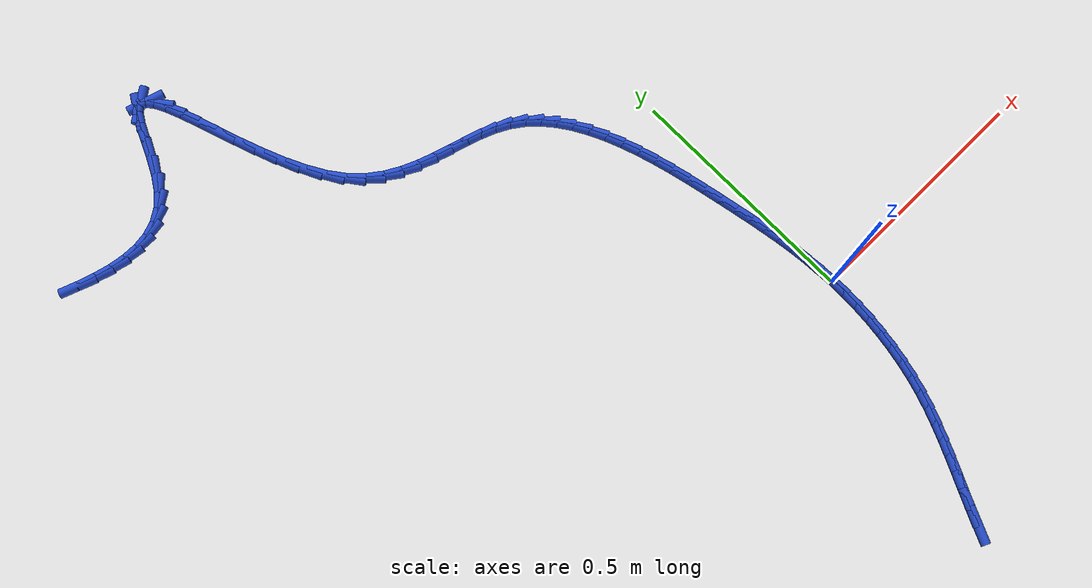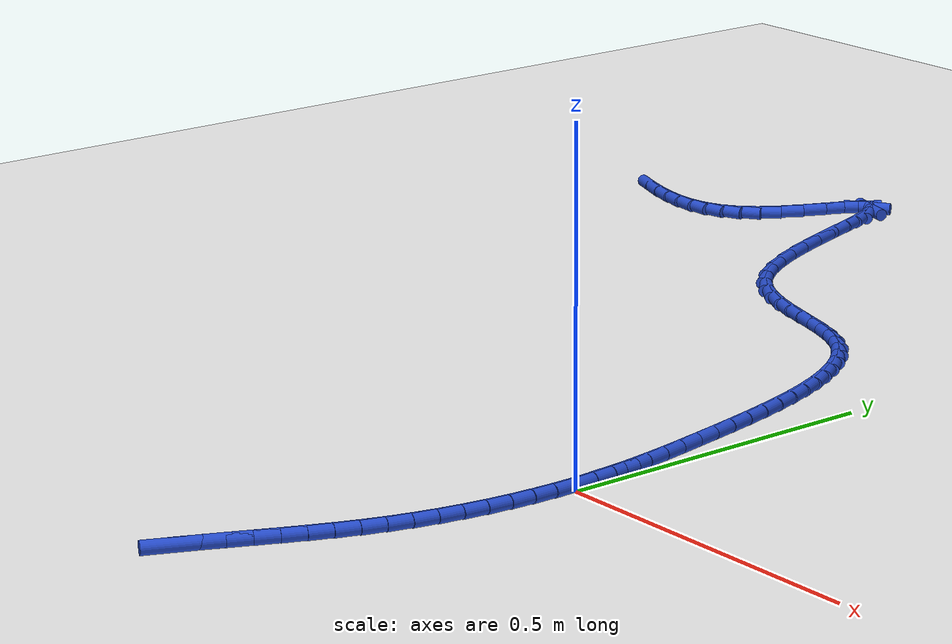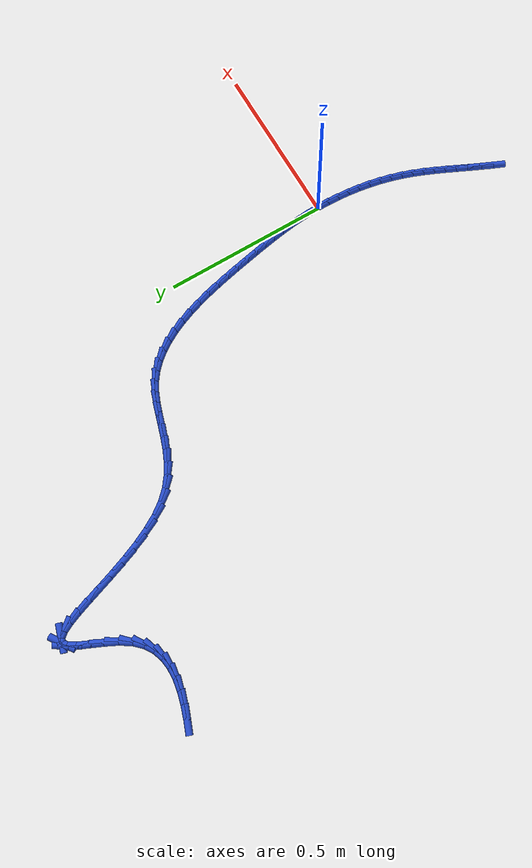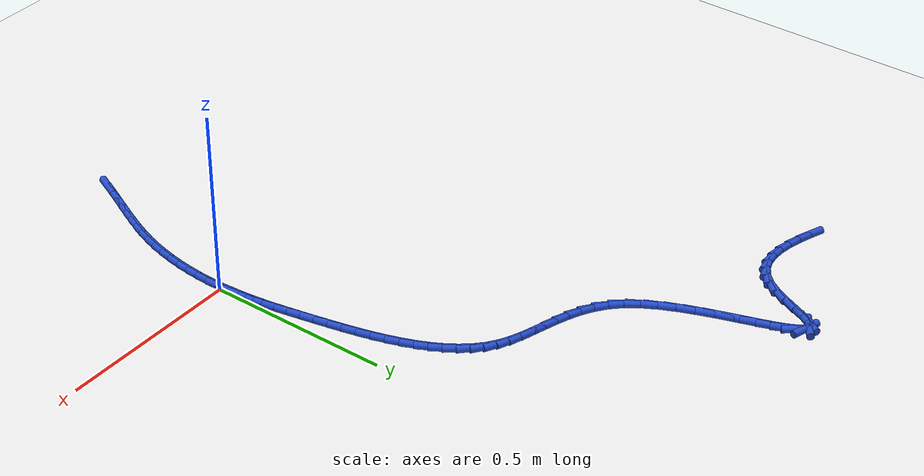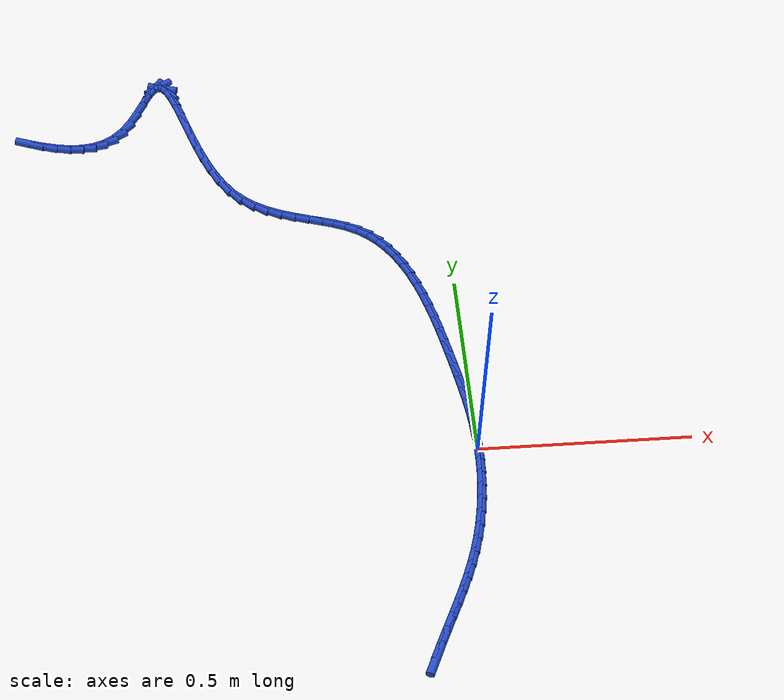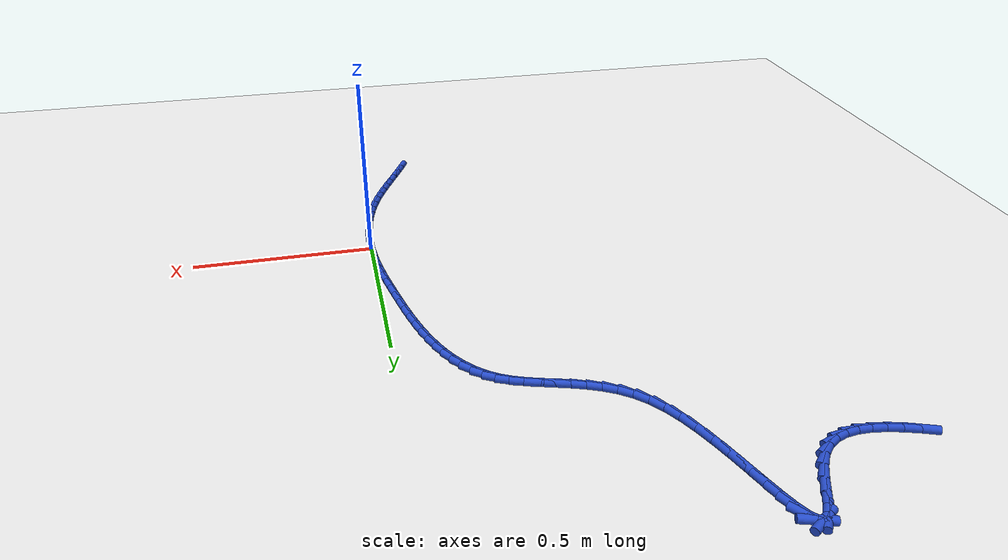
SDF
<sdf version="1.6">
 <world name="default">
  <model name="ground_plane">
   <static>1</static>
   <link name="link">
    <collision name="collision">
     <geometry><plane><normal>0 0 1</normal><size>100 100</size></plane></geometry>
     <surface><friction><ode><mu>100</mu><mu2>50</mu2></ode></friction></surface>
    </collision>
    <visual name="visual">
     <cast_shadows>0</cast_shadows>
     <geometry><plane><normal>0 0 1</normal><size>100 100</size></plane></geometry>
     <material>
      <script><uri>file://media/materials/scripts/gazebo.material</uri><name>Gazebo/WhiteGlow</name></script>
     </material>
    </visual>
   </link>
  </model>
  <model name="line">
   <link name="link_0">
    <pose>-5.204170427930421e-18 2.7755575615628914e-17 0.01 0 1.57 -1.5295594090134041</pose>
    <collision name="collision">
     <geometry><cylinder><radius>0.01</radius><length>0.08</length></cylinder></geometry>
    </collision>
    <visual name="visual">
     <material>
      <script><name>Gazebo/Blue</name><uri>file://media/materials/scripts/gazebo.material</uri></script>
     </material>
     <geometry><cylinder><radius>0.01</radius><length>0.08</length></cylinder></geometry>
    </visual>
   </link>
   <link name="link_1">
    <pose>-0.0014169569345195586 0.03434188947827309 0.01 0 1.57 -1.492928567645868</pose>
    <collision name="collision">
     <geometry><cylinder><radius>0.01</radius><length>0.08</length></cylinder></geometry>
    </collision>
    <visual name="visual">
     <material>
      <script><name>Gazebo/Blue</name><uri>file://media/materials/scripts/gazebo.material</uri></script>
     </material>
     <geometry><cylinder><radius>0.01</radius><length>0.08</length></cylinder></geometry>
    </visual>
   </link>
   <link name="link_2">
    <pose>-0.004075083631085635 0.0684092895790169 0.01 0 1.57 -1.4604513469485967</pose>
    <collision name="collision">
     <geometry><cylinder><radius>0.01</radius><length>0.08</length></cylinder></geometry>
    </collision>
    <visual name="visual">
     <material>
      <script><name>Gazebo/Blue</name><uri>file://media/materials/scripts/gazebo.material</uri></script>
     </material>
     <geometry><cylinder><radius>0.01</radius><length>0.08</length></cylinder></geometry>
    </visual>
   </link>
   <link name="link_3">
    <pose>-0.007837845970132656 0.1023707631037121 0.01 0 1.57 -1.4326376824889024</pose>
    <collision name="collision">
     <geometry><cylinder><radius>0.01</radius><length>0.08</length></cylinder></geometry>
    </collision>
    <visual name="visual">
     <material>
      <script><name>Gazebo/Blue</name><uri>file://media/materials/scripts/gazebo.material</uri></script>
     </material>
     <geometry><cylinder><radius>0.01</radius><length>0.08</length></cylinder></geometry>
    </visual>
   </link>
   <link name="link_4">
    <pose>-0.012568709832095036 0.13639487285383922 0.01 0 1.57 -1.4098197949192002</pose>
    <collision name="collision">
     <geometry><cylinder><radius>0.01</radius><length>0.08</length></cylinder></geometry>
    </collision>
    <visual name="visual">
     <material>
      <script><name>Gazebo/Blue</name><uri>file://media/materials/scripts/gazebo.material</uri></script>
     </material>
     <geometry><cylinder><radius>0.01</radius><length>0.08</length></cylinder></geometry>
    </visual>
   </link>
   <link name="link_5">
    <pose>-0.018131141097407207 0.17065018163087892 0.01 0 1.57 -1.39215696415325</pose>
    <collision name="collision">
     <geometry><cylinder><radius>0.01</radius><length>0.08</length></cylinder></geometry>
    </collision>
    <visual name="visual">
     <material>
      <script><name>Gazebo/Blue</name><uri>file://media/materials/scripts/gazebo.material</uri></script>
     </material>
     <geometry><cylinder><radius>0.01</radius><length>0.08</length></cylinder></geometry>
    </visual>
   </link>
   <link name="link_6">
    <pose>-0.024388605646503577 0.20530525223631177 0.01 0 1.57 -1.3796520291454994</pose>
    <collision name="collision">
     <geometry><cylinder><radius>0.01</radius><length>0.08</length></cylinder></geometry>
    </collision>
    <visual name="visual">
     <material>
      <script><name>Gazebo/Blue</name><uri>file://media/materials/scripts/gazebo.material</uri></script>
     </material>
     <geometry><cylinder><radius>0.01</radius><length>0.08</length></cylinder></geometry>
    </visual>
   </link>
   <link name="link_7">
    <pose>-0.03120456935981857 0.24052864747161834 0.01 0 1.57 -1.372162680434083</pose>
    <collision name="collision">
     <geometry><cylinder><radius>0.01</radius><length>0.08</length></cylinder></geometry>
    </collision>
    <visual name="visual">
     <material>
      <script><name>Gazebo/Blue</name><uri>file://media/materials/scripts/gazebo.material</uri></script>
     </material>
     <geometry><cylinder><radius>0.01</radius><length>0.08</length></cylinder></geometry>
    </visual>
   </link>
   <link name="link_8">
    <pose>-0.03844282927552442 0.27648837904686263 0.01 0 1.57 -1.366423891915562</pose>
    <collision name="collision">
     <geometry><cylinder><radius>0.01</radius><length>0.08</length></cylinder></geometry>
    </collision>
    <visual name="visual">
     <material>
      <script><name>Gazebo/Blue</name><uri>file://media/materials/scripts/gazebo.material</uri></script>
     </material>
     <geometry><cylinder><radius>0.01</radius><length>0.08</length></cylinder></geometry>
    </visual>
   </link>
   <link name="link_9">
    <pose>-0.04605367447657129 0.3132085241719294 0.01 0 1.57 -1.3553191319393685</pose>
    <collision name="collision">
     <geometry><cylinder><radius>0.01</radius><length>0.08</length></cylinder></geometry>
    </collision>
    <visual name="visual">
     <material>
      <script><name>Gazebo/Blue</name><uri>file://media/materials/scripts/gazebo.material</uri></script>
     </material>
     <geometry><cylinder><radius>0.01</radius><length>0.08</length></cylinder></geometry>
    </visual>
   </link>
   <link name="link_10">
    <pose>-0.05418905659707783 0.3503775662043218 0.01 0 1.57 -1.3378294844939285</pose>
    <collision name="collision">
     <geometry><cylinder><radius>0.01</radius><length>0.08</length></cylinder></geometry>
    </collision>
    <visual name="visual">
     <material>
      <script><name>Gazebo/Blue</name><uri>file://media/materials/scripts/gazebo.material</uri></script>
     </material>
     <geometry><cylinder><radius>0.01</radius><length>0.08</length></cylinder></geometry>
    </visual>
   </link>
   <link name="link_11">
    <pose>-0.06302961277472323 0.38763625193076445 0.01 0 1.57 -1.3136647814946891</pose>
    <collision name="collision">
     <geometry><cylinder><radius>0.01</radius><length>0.08</length></cylinder></geometry>
    </collision>
    <visual name="visual">
     <material>
      <script><name>Gazebo/Blue</name><uri>file://media/materials/scripts/gazebo.material</uri></script>
     </material>
     <geometry><cylinder><radius>0.01</radius><length>0.08</length></cylinder></geometry>
    </visual>
   </link>
   <link name="link_12">
    <pose>-0.07275598014718661 0.4246253281379812 0.01 0 1.57 -1.2822499783672037</pose>
    <collision name="collision">
     <geometry><cylinder><radius>0.01</radius><length>0.08</length></cylinder></geometry>
    </collision>
    <visual name="visual">
     <material>
      <script><name>Gazebo/Blue</name><uri>file://media/materials/scripts/gazebo.material</uri></script>
     </material>
     <geometry><cylinder><radius>0.01</radius><length>0.08</length></cylinder></geometry>
    </visual>
   </link>
   <link name="link_13">
    <pose>-0.0835487958521471 0.46098554161269617 0.01 0 1.57 -1.2427185880478226</pose>
    <collision name="collision">
     <geometry><cylinder><radius>0.01</radius><length>0.08</length></cylinder></geometry>
    </collision>
    <visual name="visual">
     <material>
      <script><name>Gazebo/Blue</name><uri>file://media/materials/scripts/gazebo.material</uri></script>
     </material>
     <geometry><cylinder><radius>0.01</radius><length>0.08</length></cylinder></geometry>
    </visual>
   </link>
   <link name="link_14">
    <pose>-0.09558869702728386 0.4963576391416338 0.01 0 1.57 -1.1938997068330766</pose>
    <collision name="collision">
     <geometry><cylinder><radius>0.01</radius><length>0.08</length></cylinder></geometry>
    </collision>
    <visual name="visual">
     <material>
      <script><name>Gazebo/Blue</name><uri>file://media/materials/scripts/gazebo.material</uri></script>
     </material>
     <geometry><cylinder><radius>0.01</radius><length>0.08</length></cylinder></geometry>
    </visual>
   </link>
   <link name="link_15">
    <pose>-0.10905632081027611 0.5303823675115183 0.01 0 1.57 -1.1343165302581957</pose>
    <collision name="collision">
     <geometry><cylinder><radius>0.01</radius><length>0.08</length></cylinder></geometry>
    </collision>
    <visual name="visual">
     <material>
      <script><name>Gazebo/Blue</name><uri>file://media/materials/scripts/gazebo.material</uri></script>
     </material>
     <geometry><cylinder><radius>0.01</radius><length>0.08</length></cylinder></geometry>
    </visual>
   </link>
   <link name="link_16">
    <pose>-0.12413230433880296 0.5627004735090739 0.01 0 1.57 -1.062229290019738</pose>
    <collision name="collision">
     <geometry><cylinder><radius>0.01</radius><length>0.08</length></cylinder></geometry>
    </collision>
    <visual name="visual">
     <material>
      <script><name>Gazebo/Blue</name><uri>file://media/materials/scripts/gazebo.material</uri></script>
     </material>
     <geometry><cylinder><radius>0.01</radius><length>0.08</length></cylinder></geometry>
    </visual>
   </link>
   <link name="link_17">
    <pose>-0.14099728475054352 0.5929527039210245 0.01 0 1.57 -0.9757807442965027</pose>
    <collision name="collision">
     <geometry><cylinder><radius>0.01</radius><length>0.08</length></cylinder></geometry>
    </collision>
    <visual name="visual">
     <material>
      <script><name>Gazebo/Blue</name><uri>file://media/materials/scripts/gazebo.material</uri></script>
     </material>
     <geometry><cylinder><radius>0.01</radius><length>0.08</length></cylinder></geometry>
    </visual>
   </link>
   <link name="link_18">
    <pose>-0.15983189918317697 0.6207798055340946 0.01 0 1.57 -0.8733316935708395</pose>
    <collision name="collision">
     <geometry><cylinder><radius>0.01</radius><length>0.08</length></cylinder></geometry>
    </collision>
    <visual name="visual">
     <material>
      <script><name>Gazebo/Blue</name><uri>file://media/materials/scripts/gazebo.material</uri></script>
     </material>
     <geometry><cylinder><radius>0.01</radius><length>0.08</length></cylinder></geometry>
    </visual>
   </link>
   <link name="link_19">
    <pose>-0.1808167847743824 0.6458225251350083 0.01 0 1.57 -0.7540755938527375</pose>
    <collision name="collision">
     <geometry><cylinder><radius>0.01</radius><length>0.08</length></cylinder></geometry>
    </collision>
    <visual name="visual">
     <material>
      <script><name>Gazebo/Blue</name><uri>file://media/materials/scripts/gazebo.material</uri></script>
     </material>
     <geometry><cylinder><radius>0.01</radius><length>0.08</length></cylinder></geometry>
    </visual>
   </link>
   <link name="link_20">
    <pose>-0.20413257866183912 0.6677216095104896 0.01 0 1.57 -0.618920137825888</pose>
    <collision name="collision">
     <geometry><cylinder><radius>0.01</radius><length>0.08</length></cylinder></geometry>
    </collision>
    <visual name="visual">
     <material>
      <script><name>Gazebo/Blue</name><uri>file://media/materials/scripts/gazebo.material</uri></script>
     </material>
     <geometry><cylinder><radius>0.01</radius><length>0.08</length></cylinder></geometry>
    </visual>
   </link>
   <link name="link_21">
    <pose>-0.22995987966621645 0.6861178802591036 0.01 0 1.57 -0.4813224558688969</pose>
    <collision name="collision">
     <geometry><cylinder><radius>0.01</radius><length>0.08</length></cylinder></geometry>
    </collision>
    <visual name="visual">
     <material>
      <script><name>Gazebo/Blue</name><uri>file://media/materials/scripts/gazebo.material</uri></script>
     </material>
     <geometry><cylinder><radius>0.01</radius><length>0.08</length></cylinder></geometry>
    </visual>
   </link>
   <link name="link_22">
    <pose>-0.2583333297952614 0.700937131577133 0.01 0 1.57 -0.37784718666653777</pose>
    <collision name="collision">
     <geometry><cylinder><radius>0.01</radius><length>0.08</length></cylinder></geometry>
    </collision>
    <visual name="visual">
     <material>
      <script><name>Gazebo/Blue</name><uri>file://media/materials/scripts/gazebo.material</uri></script>
     </material>
     <geometry><cylinder><radius>0.01</radius><length>0.08</length></cylinder></geometry>
    </visual>
   </link>
   <link name="link_23">
    <pose>-0.28881157471532903 0.7130345141684127 0.01 0 1.57 -0.31437980762544593</pose>
    <collision name="collision">
     <geometry><cylinder><radius>0.01</radius><length>0.08</length></cylinder></geometry>
    </collision>
    <visual name="visual">
     <material>
      <script><name>Gazebo/Blue</name><uri>file://media/materials/scripts/gazebo.material</uri></script>
     </material>
     <geometry><cylinder><radius>0.01</radius><length>0.08</length></cylinder></geometry>
    </visual>
   </link>
   <link name="link_24">
    <pose>-0.32085638671139727 0.7234543186514414 0.01 0 1.57 -0.28769586318459905</pose>
    <collision name="collision">
     <geometry><cylinder><radius>0.01</radius><length>0.08</length></cylinder></geometry>
    </collision>
    <visual name="visual">
     <material>
      <script><name>Gazebo/Blue</name><uri>file://media/materials/scripts/gazebo.material</uri></script>
     </material>
     <geometry><cylinder><radius>0.01</radius><length>0.08</length></cylinder></geometry>
    </visual>
   </link>
   <link name="link_25">
    <pose>-0.35392953806844385 0.7332408356447183 0.01 0 1.57 -0.2949666757380576</pose>
    <collision name="collision">
     <geometry><cylinder><radius>0.01</radius><length>0.08</length></cylinder></geometry>
    </collision>
    <visual name="visual">
     <material>
      <script><name>Gazebo/Blue</name><uri>file://media/materials/scripts/gazebo.material</uri></script>
     </material>
     <geometry><cylinder><radius>0.01</radius><length>0.08</length></cylinder></geometry>
    </visual>
   </link>
   <link name="link_26">
    <pose>-0.38749280107144707 0.7434383557667423 0.01 0 1.57 -0.3346136339096233</pose>
    <collision name="collision">
     <geometry><cylinder><radius>0.01</radius><length>0.08</length></cylinder></geometry>
    </collision>
    <visual name="visual">
     <material>
      <script><name>Gazebo/Blue</name><uri>file://media/materials/scripts/gazebo.material</uri></script>
     </material>
     <geometry><cylinder><radius>0.01</radius><length>0.08</length></cylinder></geometry>
    </visual>
   </link>
   <link name="link_27">
    <pose>-0.4210079480053845 0.7550911696360121 0.01 0 1.57 -0.4059189672359612</pose>
    <collision name="collision">
     <geometry><cylinder><radius>0.01</radius><length>0.08</length></cylinder></geometry>
    </collision>
    <visual name="visual">
     <material>
      <script><name>Gazebo/Blue</name><uri>file://media/materials/scripts/gazebo.material</uri></script>
     </material>
     <geometry><cylinder><radius>0.01</radius><length>0.08</length></cylinder></geometry>
    </visual>
   </link>
   <link name="link_28">
    <pose>-0.4539367511552342 0.7692435678710267 0.01 0 1.57 -0.5077531292962789</pose>
    <collision name="collision">
     <geometry><cylinder><radius>0.01</radius><length>0.08</length></cylinder></geometry>
    </collision>
    <visual name="visual">
     <material>
      <script><name>Gazebo/Blue</name><uri>file://media/materials/scripts/gazebo.material</uri></script>
     </material>
     <geometry><cylinder><radius>0.01</radius><length>0.08</length></cylinder></geometry>
    </visual>
   </link>
   <link name="link_29">
    <pose>-0.48574098280597383 0.7869398410902848 0.01 0 1.57 -0.6366366953817574</pose>
    <collision name="collision">
     <geometry><cylinder><radius>0.01</radius><length>0.08</length></cylinder></geometry>
    </collision>
    <visual name="visual">
     <material>
      <script><name>Gazebo/Blue</name><uri>file://media/materials/scripts/gazebo.material</uri></script>
     </material>
     <geometry><cylinder><radius>0.01</radius><length>0.08</length></cylinder></geometry>
    </visual>
   </link>
   <link name="link_30">
    <pose>-0.5158824152425817 0.8092242799122857 0.01 0 1.57 -0.7849772611592256</pose>
    <collision name="collision">
     <geometry><cylinder><radius>0.01</radius><length>0.08</length></cylinder></geometry>
    </collision>
    <visual name="visual">
     <material>
      <script><name>Gazebo/Blue</name><uri>file://media/materials/scripts/gazebo.material</uri></script>
     </material>
     <geometry><cylinder><radius>0.01</radius><length>0.08</length></cylinder></geometry>
    </visual>
   </link>
   <link name="link_31">
    <pose>-0.543822820750036 0.8371411749555288 0.01 0 1.57 -0.9354698043360513</pose>
    <collision name="collision">
     <geometry><cylinder><radius>0.01</radius><length>0.08</length></cylinder></geometry>
    </collision>
    <visual name="visual">
     <material>
      <script><name>Gazebo/Blue</name><uri>file://media/materials/scripts/gazebo.material</uri></script>
     </material>
     <geometry><cylinder><radius>0.01</radius><length>0.08</length></cylinder></geometry>
    </visual>
   </link>
   <link name="link_32">
    <pose>-0.5691129564258318 0.8714419648784033 0.01 0 1.57 -1.050915930820242</pose>
    <collision name="collision">
     <geometry><cylinder><radius>0.01</radius><length>0.08</length></cylinder></geometry>
    </collision>
    <visual name="visual">
     <material>
      <script><name>Gazebo/Blue</name><uri>file://media/materials/scripts/gazebo.material</uri></script>
     </material>
     <geometry><cylinder><radius>0.01</radius><length>0.08</length></cylinder></geometry>
    </visual>
   </link>
   <link name="link_33">
    <pose>-0.5918332766480967 0.9111348370753205 0.01 0 1.57 -1.131353881538183</pose>
    <collision name="collision">
     <geometry><cylinder><radius>0.01</radius><length>0.08</length></cylinder></geometry>
    </collision>
    <visual name="visual">
     <material>
      <script><name>Gazebo/Blue</name><uri>file://media/materials/scripts/gazebo.material</uri></script>
     </material>
     <geometry><cylinder><radius>0.01</radius><length>0.08</length></cylinder></geometry>
    </visual>
   </link>
   <link name="link_34">
    <pose>-0.6122594403990578 0.9545855541345307 0.01 0 1.57 -1.1869152295459393</pose>
    <collision name="collision">
     <geometry><cylinder><radius>0.01</radius><length>0.08</length></cylinder></geometry>
    </collision>
    <visual name="visual">
     <material>
      <script><name>Gazebo/Blue</name><uri>file://media/materials/scripts/gazebo.material</uri></script>
     </material>
     <geometry><cylinder><radius>0.01</radius><length>0.08</length></cylinder></geometry>
    </visual>
   </link>
   <link name="link_35">
    <pose>-0.6306674132162439 1.0001588697606523 0.01 0 1.57 -1.2236290220097574</pose>
    <collision name="collision">
     <geometry><cylinder><radius>0.01</radius><length>0.08</length></cylinder></geometry>
    </collision>
    <visual name="visual">
     <material>
      <script><name>Gazebo/Blue</name><uri>file://media/materials/scripts/gazebo.material</uri></script>
     </material>
     <geometry><cylinder><radius>0.01</radius><length>0.08</length></cylinder></geometry>
    </visual>
   </link>
   <link name="link_36">
    <pose>-0.6473331606371838 1.0462195376583032 0.01 0 1.57 -1.2444726494711058</pose>
    <collision name="collision">
     <geometry><cylinder><radius>0.01</radius><length>0.08</length></cylinder></geometry>
    </collision>
    <visual name="visual">
     <material>
      <script><name>Gazebo/Blue</name><uri>file://media/materials/scripts/gazebo.material</uri></script>
     </material>
     <geometry><cylinder><radius>0.01</radius><length>0.08</length></cylinder></geometry>
    </visual>
   </link>
   <link name="link_37">
    <pose>-0.6625326481994066 1.0911323115321006 0.01 0 1.57 -1.2497726612800535</pose>
    <collision name="collision">
     <geometry><cylinder><radius>0.01</radius><length>0.08</length></cylinder></geometry>
    </collision>
    <visual name="visual">
     <material>
      <script><name>Gazebo/Blue</name><uri>file://media/materials/scripts/gazebo.material</uri></script>
     </material>
     <geometry><cylinder><radius>0.01</radius><length>0.08</length></cylinder></geometry>
    </visual>
   </link>
   <link name="link_38">
    <pose>-0.676541841440441 1.133261945086663 0.01 0 1.57 -1.236582155620675</pose>
    <collision name="collision">
     <geometry><cylinder><radius>0.01</radius><length>0.08</length></cylinder></geometry>
    </collision>
    <visual name="visual">
     <material>
      <script><name>Gazebo/Blue</name><uri>file://media/materials/scripts/gazebo.material</uri></script>
     </material>
     <geometry><cylinder><radius>0.01</radius><length>0.08</length></cylinder></geometry>
    </visual>
   </link>
   <link name="link_39">
    <pose>-0.689636705897816 1.1709731920266082 0.01 0 1.57 -1.195926985811713</pose>
    <collision name="collision">
     <geometry><cylinder><radius>0.01</radius><length>0.08</length></cylinder></geometry>
    </collision>
    <visual name="visual">
     <material>
      <script><name>Gazebo/Blue</name><uri>file://media/materials/scripts/gazebo.material</uri></script>
     </material>
     <geometry><cylinder><radius>0.01</radius><length>0.08</length></cylinder></geometry>
    </visual>
   </link>
   <link name="link_40">
    <pose>-0.7020932071090603 1.2026308060565538 0.01 0 1.57 -1.1034927882325485</pose>
    <collision name="collision">
     <geometry><cylinder><radius>0.01</radius><length>0.08</length></cylinder></geometry>
    </collision>
    <visual name="visual">
     <material>
      <script><name>Gazebo/Blue</name><uri>file://media/materials/scripts/gazebo.material</uri></script>
     </material>
     <geometry><cylinder><radius>0.01</radius><length>0.08</length></cylinder></geometry>
    </visual>
   </link>
   <link name="link_41">
    <pose>-0.7141873106117032 1.2265995408811186 0.01 0 1.57 -0.8840157648506225</pose>
    <collision name="collision">
     <geometry><cylinder><radius>0.01</radius><length>0.08</length></cylinder></geometry>
    </collision>
    <visual name="visual">
     <material>
      <script><name>Gazebo/Blue</name><uri>file://media/materials/scripts/gazebo.material</uri></script>
     </material>
     <geometry><cylinder><radius>0.01</radius><length>0.08</length></cylinder></geometry>
    </visual>
   </link>
   <link name="link_42">
    <pose>-0.7261949819432729 1.241244150204919 0.01 0 1.57 -0.2934169932314978</pose>
    <collision name="collision">
     <geometry><cylinder><radius>0.01</radius><length>0.08</length></cylinder></geometry>
    </collision>
    <visual name="visual">
     <material>
      <script><name>Gazebo/Blue</name><uri>file://media/materials/scripts/gazebo.material</uri></script>
     </material>
     <geometry><cylinder><radius>0.01</radius><length>0.08</length></cylinder></geometry>
    </visual>
   </link>
   <link name="link_43">
    <pose>-0.7383921866412987 1.2449293877325742 0.01 0 1.57 0.6130799242976773</pose>
    <collision name="collision">
     <geometry><cylinder><radius>0.01</radius><length>0.08</length></cylinder></geometry>
    </collision>
    <visual name="visual">
     <material>
      <script><name>Gazebo/Blue</name><uri>file://media/materials/scripts/gazebo.material</uri></script>
     </material>
     <geometry><cylinder><radius>0.01</radius><length>0.08</length></cylinder></geometry>
    </visual>
   </link>
   <link name="link_44">
    <pose>-0.7510549122303716 1.2360209931871597 0.01 0 1.57 1.0181445368010154</pose>
    <collision name="collision">
     <geometry><cylinder><radius>0.01</radius><length>0.08</length></cylinder></geometry>
    </collision>
    <visual name="visual">
     <material>
      <script><name>Gazebo/Blue</name><uri>file://media/materials/scripts/gazebo.material</uri></script>
     </material>
     <geometry><cylinder><radius>0.01</radius><length>0.08</length></cylinder></geometry>
    </visual>
   </link>
   <link name="link_45">
    <pose>-0.7644893392520428 1.2142387240140642 0.01 0 1.57 1.1293146660367903</pose>
    <collision name="collision">
     <geometry><cylinder><radius>0.01</radius><length>0.08</length></cylinder></geometry>
    </collision>
    <visual name="visual">
     <material>
      <script><name>Gazebo/Blue</name><uri>file://media/materials/scripts/gazebo.material</uri></script>
     </material>
     <geometry><cylinder><radius>0.01</radius><length>0.08</length></cylinder></geometry>
    </visual>
   </link>
   <link name="link_46">
    <pose>-0.7790916897498845 1.1833402842356449 0.01 0 1.57 1.1431556896960293</pose>
    <collision name="collision">
     <geometry><cylinder><radius>0.01</radius><length>0.08</length></cylinder></geometry>
    </collision>
    <visual name="visual">
     <material>
      <script><name>Gazebo/Blue</name><uri>file://media/materials/scripts/gazebo.material</uri></script>
     </material>
     <geometry><cylinder><radius>0.01</radius><length>0.08</length></cylinder></geometry>
    </visual>
   </link>
   <link name="link_47">
    <pose>-0.7952748963168429 1.1478327690341772 0.01 0 1.57 1.098820851667058</pose>
    <collision name="collision">
     <geometry><cylinder><radius>0.01</radius><length>0.08</length></cylinder></geometry>
    </collision>
    <visual name="visual">
     <material>
      <script><name>Gazebo/Blue</name><uri>file://media/materials/scripts/gazebo.material</uri></script>
     </material>
     <geometry><cylinder><radius>0.01</radius><length>0.08</length></cylinder></geometry>
    </visual>
   </link>
   <link name="link_48">
    <pose>-0.8134518915458646 1.1122232735919362 0.01 0 1.57 0.9877795945861113</pose>
    <collision name="collision">
     <geometry><cylinder><radius>0.01</radius><length>0.08</length></cylinder></geometry>
    </collision>
    <visual name="visual">
     <material>
      <script><name>Gazebo/Blue</name><uri>file://media/materials/scripts/gazebo.material</uri></script>
     </material>
     <geometry><cylinder><radius>0.01</radius><length>0.08</length></cylinder></geometry>
    </visual>
   </link>
   <link name="link_49">
    <pose>-0.8340348722163158 1.081012758287712 0.01 0 1.57 0.7967184467105943</pose>
    <collision name="collision">
     <geometry><cylinder><radius>0.01</radius><length>0.08</length></cylinder></geometry>
    </collision>
    <visual name="visual">
     <material>
      <script><name>Gazebo/Blue</name><uri>file://media/materials/scripts/gazebo.material</uri></script>
     </material>
     <geometry><cylinder><radius>0.01</radius><length>0.08</length></cylinder></geometry>
    </visual>
   </link>
   <link name="link_50">
    <pose>-0.8572622708435654 1.057253433922149 0.01 0 1.57 0.5722777304936463</pose>
    <collision name="collision">
     <geometry><cylinder><radius>0.01</radius><length>0.08</length></cylinder></geometry>
    </collision>
    <visual name="visual">
     <material>
      <script><name>Gazebo/Blue</name><uri>file://media/materials/scripts/gazebo.material</uri></script>
     </material>
     <geometry><cylinder><radius>0.01</radius><length>0.08</length></cylinder></geometry>
    </visual>
   </link>
   <link name="link_51">
    <pose>-0.8829757150570987 1.0406891733338695 0.01 0 1.57 0.34587273314613376</pose>
    <collision name="collision">
     <geometry><cylinder><radius>0.01</radius><length>0.08</length></cylinder></geometry>
    </collision>
    <visual name="visual">
     <material>
      <script><name>Gazebo/Blue</name><uri>file://media/materials/scripts/gazebo.material</uri></script>
     </material>
     <geometry><cylinder><radius>0.01</radius><length>0.08</length></cylinder></geometry>
    </visual>
   </link>
   <link name="link_52">
    <pose>-0.9109617006961301 1.030604191224311 0.01 0 1.57 0.14285401857127752</pose>
    <collision name="collision">
     <geometry><cylinder><radius>0.01</radius><length>0.08</length></cylinder></geometry>
    </collision>
    <visual name="visual">
     <material>
      <script><name>Gazebo/Blue</name><uri>file://media/materials/scripts/gazebo.material</uri></script>
     </material>
     <geometry><cylinder><radius>0.01</radius><length>0.08</length></cylinder></geometry>
    </visual>
   </link>
   <link name="link_53">
    <pose>-0.9410067235998725 1.0262827022949106 0.01 0 1.57 -0.022768290971229156</pose>
    <collision name="collision">
     <geometry><cylinder><radius>0.01</radius><length>0.08</length></cylinder></geometry>
    </collision>
    <visual name="visual">
     <material>
      <script><name>Gazebo/Blue</name><uri>file://media/materials/scripts/gazebo.material</uri></script>
     </material>
     <geometry><cylinder><radius>0.01</radius><length>0.08</length></cylinder></geometry>
    </visual>
   </link>
   <link name="link_54">
    <pose>-0.9728972796075404 1.027008921247107 0.01 0 1.57 -0.14975787793225118</pose>
    <collision name="collision">
     <geometry><cylinder><radius>0.01</radius><length>0.08</length></cylinder></geometry>
    </collision>
    <visual name="visual">
     <material>
      <script><name>Gazebo/Blue</name><uri>file://media/materials/scripts/gazebo.material</uri></script>
     </material>
     <geometry><cylinder><radius>0.01</radius><length>0.08</length></cylinder></geometry>
    </visual>
   </link>
   <link name="link_55">
    <pose>-1.0064198645583473 1.0320670627823374 0.01 0 1.57 -0.24333492597862233</pose>
    <collision name="collision">
     <geometry><cylinder><radius>0.01</radius><length>0.08</length></cylinder></geometry>
    </collision>
    <visual name="visual">
     <material>
      <script><name>Gazebo/Blue</name><uri>file://media/materials/scripts/gazebo.material</uri></script>
     </material>
     <geometry><cylinder><radius>0.01</radius><length>0.08</length></cylinder></geometry>
    </visual>
   </link>
   <link name="link_56">
    <pose>-1.041360974291507 1.0407413416020388 0.01 0 1.57 -0.3099004122861065</pose>
    <collision name="collision">
     <geometry><cylinder><radius>0.01</radius><length>0.08</length></cylinder></geometry>
    </collision>
    <visual name="visual">
     <material>
      <script><name>Gazebo/Blue</name><uri>file://media/materials/scripts/gazebo.material</uri></script>
     </material>
     <geometry><cylinder><radius>0.01</radius><length>0.08</length></cylinder></geometry>
    </visual>
   </link>
   <link name="link_57">
    <pose>-1.0775071046462337 1.0523159724076496 0.01 0 1.57 -0.35481252147726433</pose>
    <collision name="collision">
     <geometry><cylinder><radius>0.01</radius><length>0.08</length></cylinder></geometry>
    </collision>
    <visual name="visual">
     <material>
      <script><name>Gazebo/Blue</name><uri>file://media/materials/scripts/gazebo.material</uri></script>
     </material>
     <geometry><cylinder><radius>0.01</radius><length>0.08</length></cylinder></geometry>
    </visual>
   </link>
   <link name="link_214">
    <pose>-0.15118002234854214 -0.5321493578379444 0.01 0 1.57 1.1462569156904456</pose>
    <collision name="collision">
     <geometry><cylinder><radius>0.01</radius><length>0.08</length></cylinder></geometry>
    </collision>
    <visual name="visual">
     <material>
      <script><name>Gazebo/Blue</name><uri>file://media/materials/scripts/gazebo.material</uri></script>
     </material>
     <geometry><cylinder><radius>0.01</radius><length>0.08</length></cylinder></geometry>
    </visual>
   </link>
   <link name="link_215">
    <pose>-0.1359355760174906 -0.49842482086527456 0.01 0 1.57 1.1327827198855829</pose>
    <collision name="collision">
     <geometry><cylinder><radius>0.01</radius><length>0.08</length></cylinder></geometry>
    </collision>
    <visual name="visual">
     <material>
      <script><name>Gazebo/Blue</name><uri>file://media/materials/scripts/gazebo.material</uri></script>
     </material>
     <geometry><cylinder><radius>0.01</radius><length>0.08</length></cylinder></geometry>
    </visual>
   </link>
   <link name="link_216">
    <pose>-0.12061322029920488 -0.4657096406089677 0.01 0 1.57 1.127238218801412</pose>
    <collision name="collision">
     <geometry><cylinder><radius>0.01</radius><length>0.08</length></cylinder></geometry>
    </collision>
    <visual name="visual">
     <material>
      <script><name>Gazebo/Blue</name><uri>file://media/materials/scripts/gazebo.material</uri></script>
     </material>
     <geometry><cylinder><radius>0.01</radius><length>0.08</length></cylinder></geometry>
    </visual>
   </link>
   <link name="link_217">
    <pose>-0.10542477280702355 -0.4337430163624082 0.01 0 1.57 1.1303449696198438</pose>
    <collision name="collision">
     <geometry><cylinder><radius>0.01</radius><length>0.08</length></cylinder></geometry>
    </collision>
    <visual name="visual">
     <material>
      <script><name>Gazebo/Blue</name><uri>file://media/materials/scripts/gazebo.material</uri></script>
     </material>
     <geometry><cylinder><radius>0.01</radius><length>0.08</length></cylinder></geometry>
    </visual>
   </link>
   <link name="link_218">
    <pose>-0.09058521968734116 -0.4022587294352043 0.01 0 1.57 1.1425037493935166</pose>
    <collision name="collision">
     <geometry><cylinder><radius>0.01</radius><length>0.08</length></cylinder></geometry>
    </collision>
    <visual name="visual">
     <material>
      <script><name>Gazebo/Blue</name><uri>file://media/materials/scripts/gazebo.material</uri></script>
     </material>
     <geometry><cylinder><radius>0.01</radius><length>0.08</length></cylinder></geometry>
    </visual>
   </link>
   <link name="link_219">
    <pose>-0.07630954708655202 -0.3709905611369639 0.01 0 1.57 1.163891452596351</pose>
    <collision name="collision">
     <geometry><cylinder><radius>0.01</radius><length>0.08</length></cylinder></geometry>
    </collision>
    <visual name="visual">
     <material>
      <script><name>Gazebo/Blue</name><uri>file://media/materials/scripts/gazebo.material</uri></script>
     </material>
     <geometry><cylinder><radius>0.01</radius><length>0.08</length></cylinder></geometry>
    </visual>
   </link>
   <link name="link_220">
    <pose>-0.06281274115105141 -0.3396722927772972 0.01 0 1.57 1.1944083529391885</pose>
    <collision name="collision">
     <geometry><cylinder><radius>0.01</radius><length>0.08</length></cylinder></geometry>
    </collision>
    <visual name="visual">
     <material>
      <script><name>Gazebo/Blue</name><uri>file://media/materials/scripts/gazebo.material</uri></script>
     </material>
     <geometry><cylinder><radius>0.01</radius><length>0.08</length></cylinder></geometry>
    </visual>
   </link>
   <link name="link_221">
    <pose>-0.05030978802723349 -0.30803770566581146 0.01 0 1.57 1.233620524878123</pose>
    <collision name="collision">
     <geometry><cylinder><radius>0.01</radius><length>0.08</length></cylinder></geometry>
    </collision>
    <visual name="visual">
     <material>
      <script><name>Gazebo/Blue</name><uri>file://media/materials/scripts/gazebo.material</uri></script>
     </material>
     <geometry><cylinder><radius>0.01</radius><length>0.08</length></cylinder></geometry>
    </visual>
   </link>
   <link name="link_222">
    <pose>-0.03901567386149289 -0.2758205811121155 0.01 0 1.57 1.279816312098099</pose>
    <collision name="collision">
     <geometry><cylinder><radius>0.01</radius><length>0.08</length></cylinder></geometry>
    </collision>
    <visual name="visual">
     <material>
      <script><name>Gazebo/Blue</name><uri>file://media/materials/scripts/gazebo.material</uri></script>
     </material>
     <geometry><cylinder><radius>0.01</radius><length>0.08</length></cylinder></geometry>
    </visual>
   </link>
   <link name="link_223">
    <pose>-0.029124948770978577 -0.24279429422221369 0.01 0 1.57 1.3260817160315372</pose>
    <collision name="collision">
     <geometry><cylinder><radius>0.01</radius><length>0.08</length></cylinder></geometry>
    </collision>
    <visual name="visual">
     <material>
      <script><name>Gazebo/Blue</name><uri>file://media/materials/scripts/gazebo.material</uri></script>
     </material>
     <geometry><cylinder><radius>0.01</radius><length>0.08</length></cylinder></geometry>
    </visual>
   </link>
   <link name="link_224">
    <pose>-0.020688495121472934 -0.20901056926809575 0.01 0 1.57 1.3700764433379307</pose>
    <collision name="collision">
     <geometry><cylinder><radius>0.01</radius><length>0.08</length></cylinder></geometry>
    </collision>
    <visual name="visual">
     <material>
      <script><name>Gazebo/Blue</name><uri>file://media/materials/scripts/gazebo.material</uri></script>
     </material>
     <geometry><cylinder><radius>0.01</radius><length>0.08</length></cylinder></geometry>
    </visual>
   </link>
   <link name="link_225">
    <pose>-0.013695576909296325 -0.174640513066443 0.01 0 1.57 1.4122873054585694</pose>
    <collision name="collision">
     <geometry><cylinder><radius>0.01</radius><length>0.08</length></cylinder></geometry>
    </collision>
    <visual name="visual">
     <material>
      <script><name>Gazebo/Blue</name><uri>file://media/materials/scripts/gazebo.material</uri></script>
     </material>
     <geometry><cylinder><radius>0.01</radius><length>0.08</length></cylinder></geometry>
    </visual>
   </link>
   <link name="link_226">
    <pose>-0.008135222208495932 -0.1398556895216795 0.01 0 1.57 1.4531858563982367</pose>
    <collision name="collision">
     <geometry><cylinder><radius>0.01</radius><length>0.08</length></cylinder></geometry>
    </collision>
    <visual name="visual">
     <material>
      <script><name>Gazebo/Blue</name><uri>file://media/materials/scripts/gazebo.material</uri></script>
     </material>
     <geometry><cylinder><radius>0.01</radius><length>0.08</length></cylinder></geometry>
    </visual>
   </link>
   <link name="link_227">
    <pose>-0.003996459093118924 -0.10482766253822944 0.01 0 1.57 1.4932266591900971</pose>
    <collision name="collision">
     <geometry><cylinder><radius>0.01</radius><length>0.08</length></cylinder></geometry>
    </collision>
    <visual name="visual">
     <material>
      <script><name>Gazebo/Blue</name><uri>file://media/materials/scripts/gazebo.material</uri></script>
     </material>
     <geometry><cylinder><radius>0.01</radius><length>0.08</length></cylinder></geometry>
    </visual>
   </link>
   <link name="link_228">
    <pose>-0.001268315637212429 -0.069727996020516 0.01 0 1.57 1.5328572398512388</pose>
    <collision name="collision">
     <geometry><cylinder><radius>0.01</radius><length>0.08</length></cylinder></geometry>
    </collision>
    <visual name="visual">
     <material>
      <script><name>Gazebo/Blue</name><uri>file://media/materials/scripts/gazebo.material</uri></script>
     </material>
     <geometry><cylinder><radius>0.01</radius><length>0.08</length></cylinder></geometry>
    </visual>
   </link>
   <link name="link_229">
    <pose>6.018008517623928e-05 -0.03472825387296506 0.01 0 1.57 -1.5690634430985726</pose>
    <collision name="collision">
     <geometry><cylinder><radius>0.01</radius><length>0.08</length></cylinder></geometry>
    </collision>
    <visual name="visual">
     <material>
      <script><name>Gazebo/Blue</name><uri>file://media/materials/scripts/gazebo.material</uri></script>
     </material>
     <geometry><cylinder><radius>0.01</radius><length>0.08</length></cylinder></geometry>
    </visual>
   </link>
   <link name="link_230">
    <pose>-8.673617379884035e-18 1.5959455978986625e-16 0.01 0 1.57 -1.5288819798953361</pose>
    <collision name="collision">
     <geometry><cylinder><radius>0.01</radius><length>0.08</length></cylinder></geometry>
    </collision>
    <visual name="visual">
     <material>
      <script><name>Gazebo/Blue</name><uri>file://media/materials/scripts/gazebo.material</uri></script>
     </material>
     <geometry><cylinder><radius>0.01</radius><length>0.08</length></cylinder></geometry>
    </visual>
   </link>
   <link name="link_231">
    <pose>-0.0014378839667883482 0.03428520169395558 0.01 0 1.57 -1.4876924415447088</pose>
    <collision name="collision">
     <geometry><cylinder><radius>0.01</radius><length>0.08</length></cylinder></geometry>
    </collision>
    <visual name="visual">
     <material>
      <script><name>Gazebo/Blue</name><uri>file://media/materials/scripts/gazebo.material</uri></script>
     </material>
     <geometry><cylinder><radius>0.01</radius><length>0.08</length></cylinder></geometry>
    </visual>
   </link>
   <link name="link_232">
    <pose>-0.004242499889235953 0.06795578730447711 0.01 0 1.57 -1.508446950275522</pose>
    <collision name="collision">
     <geometry><cylinder><radius>0.01</radius><length>0.08</length></cylinder></geometry>
    </collision>
    <visual name="visual">
     <material>
      <script><name>Gazebo/Blue</name><uri>file://media/materials/scripts/gazebo.material</uri></script>
     </material>
     <geometry><cylinder><radius>0.01</radius><length>0.08</length></cylinder></geometry>
    </visual>
   </link>
  </model>
 </world>
</sdf>
